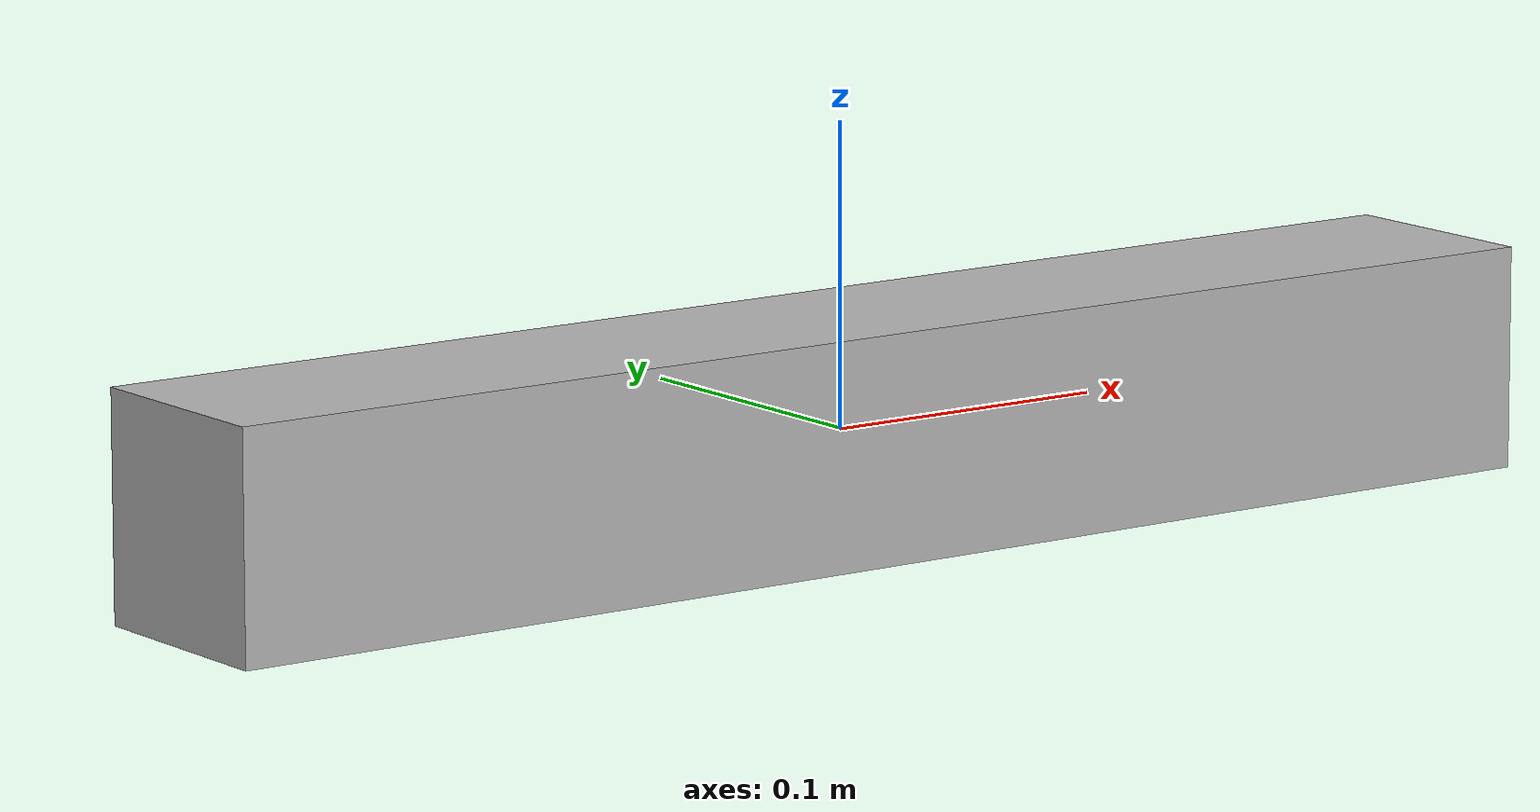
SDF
<?xml version='1.0'?>
<sdf version='1.7'>
  <model name='shelf'>
    <link name='shelf_body'>
      <pose>0.0 0.0 0.0 0.0 0.0 0.0</pose>
      <visual name='shelf_body_vis'>
        <pose>0.0 0.0 0.0 0.0 0.0 0.0</pose>
        <geometry>
          <box>
            <size>0.5 0.075 0.075</size>
          </box>
        </geometry>
      </visual>
      <collision name='shelf_body_collision'>
        <pose>0 0 0 0 0 0</pose>
        <geometry>
          <box>
            <size>0.5 0.075 0.075</size>
          </box>
        </geometry>
      </collision>
      <inertial>
        <pose>0 0 0 0 0 0</pose>
        <mass>1.3</mass>
        <inertia>
          <ixx>1.1e-2</ixx>
          <ixy>0</ixy>
          <ixz>0</ixz>
          <iyy>1.1e-2</iyy>
          <iyz>0</iyz>
          <izz>1.1e-2</izz>
        </inertia>
      </inertial>
    </link>
  </model>
</sdf>
